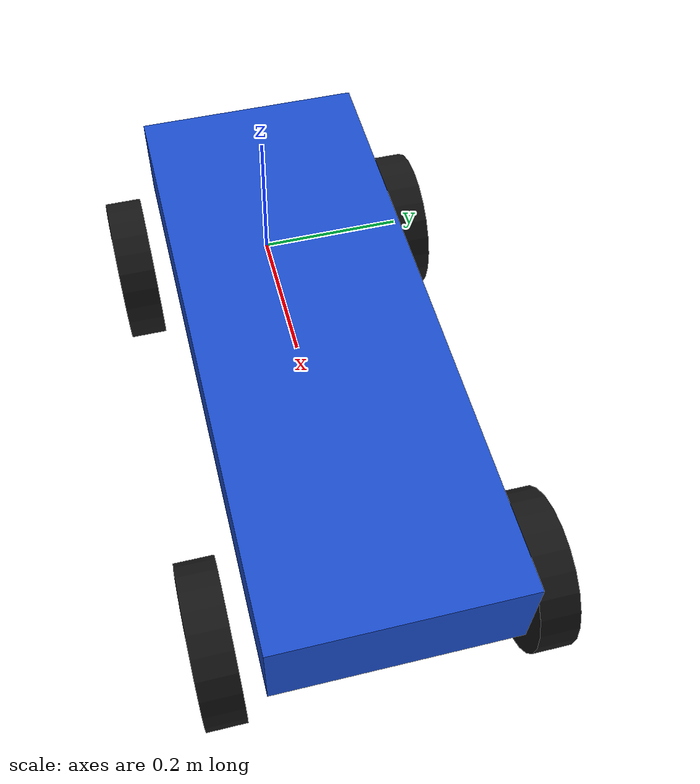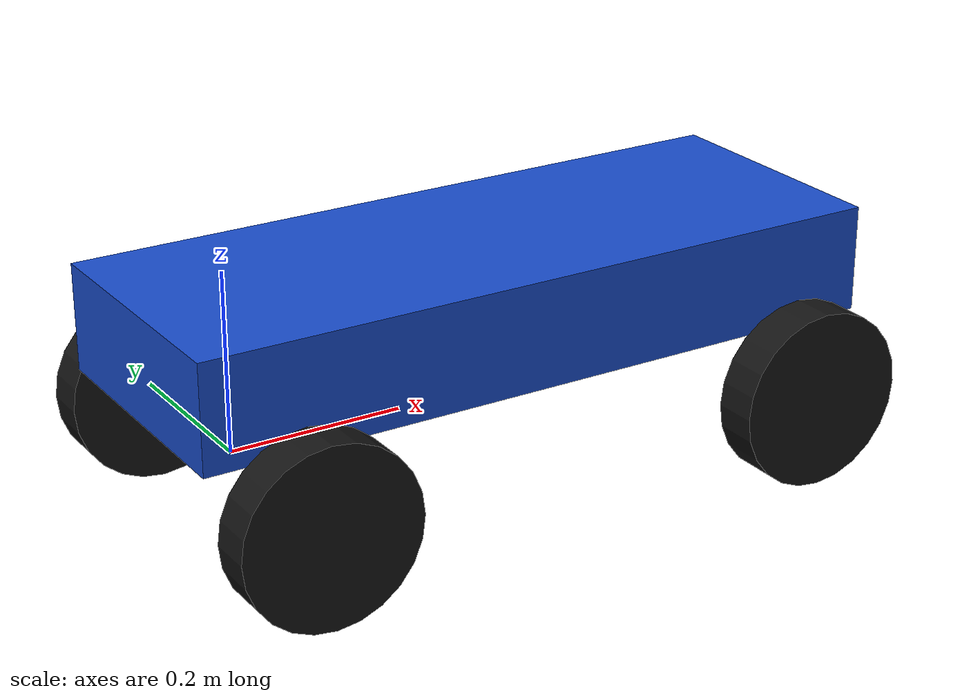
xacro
<?xml version="1.0"?>
<robot name="amr_robot" xmlns:xacro="http://www.ros.org/wiki/xacro">

  <!-- Parametry podwozia: metry i kilogramy -->
  <xacro:property name="chassis_length" value="0.80"/>
  <xacro:property name="chassis_width" value="0.30"/>
  <xacro:property name="chassis_height" value="0.12"/>
  <xacro:property name="chassis_mass" value="12.0"/>

  <!-- Parametry kół i skrętu -->
  <xacro:property name="wheel_radius" value="0.10"/>
  <xacro:property name="wheel_width" value="0.05"/>
  <xacro:property name="wheel_track" value="0.40"/>
  <xacro:property name="wheelbase" value="0.60"/>
  <xacro:property name="steering_limit" value="0.60"/>
  <xacro:property name="wheel_mass" value="0.50"/>
  <xacro:property name="steering_mass" value="0.20"/>
  <xacro:property name="steering_size" value="0.04"/>

  <!-- Kolory -->
  <material name="chassis_blue">
    <color rgba="0.1 0.3 0.8 1.0"/>
  </material>

  <material name="wheel_black">
    <color rgba="0.08 0.08 0.08 1.0"/>
  </material>

  <!-- Układ odniesienia w środku tylnej osi -->
  <link name="base_link"/>

  <!-- Podwozie -->
  <link name="chassis_link">
    <inertial>
      <origin xyz="0 0 0" rpy="0 0 0"/>
      <mass value="${chassis_mass}"/>
      <inertia
        ixx="${chassis_mass * (chassis_width**2 + chassis_height**2) / 12}"
        ixy="0"
        ixz="0"
        iyy="${chassis_mass * (chassis_length**2 + chassis_height**2) / 12}"
        iyz="0"
        izz="${chassis_mass * (chassis_length**2 + chassis_width**2) / 12}"/>
    </inertial>

    <visual>
      <geometry>
        <box size="${chassis_length} ${chassis_width} ${chassis_height}"/>
      </geometry>
      <material name="chassis_blue"/>
    </visual>

    <collision>
      <geometry>
        <box size="${chassis_length} ${chassis_width} ${chassis_height}"/>
      </geometry>
    </collision>
  </link>

  <joint name="base_to_chassis" type="fixed">
    <parent link="base_link"/>
    <child link="chassis_link"/>
    <origin xyz="0.30 0 0.12" rpy="0 0 0"/>
  </joint>

  <!-- Wspólna bezwładność koła: cylinder z osią Y -->
  <xacro:macro name="wheel_inertial">
    <inertial>
      <origin xyz="0 0 0" rpy="0 0 0"/>
      <mass value="${wheel_mass}"/>
      <inertia
        ixx="${wheel_mass * (3 * wheel_radius**2 + wheel_width**2) / 12}"
        ixy="0"
        ixz="0"
        iyy="${wheel_mass * wheel_radius**2 / 2}"
        iyz="0"
        izz="${wheel_mass * (3 * wheel_radius**2 + wheel_width**2) / 12}"/>
    </inertial>
  </xacro:macro>

  <!-- Tylne koło: obrót bez skrętu -->
  <xacro:macro name="rear_wheel" params="side y">

    <link name="rear_${side}_wheel_link">
      <xacro:wheel_inertial/>

      <visual>
        <origin xyz="0 0 0" rpy="${pi / 2} 0 0"/>
        <geometry>
          <cylinder radius="${wheel_radius}" length="${wheel_width}"/>
        </geometry>
        <material name="wheel_black"/>
      </visual>

      <collision>
        <origin xyz="0 0 0" rpy="${pi / 2} 0 0"/>
        <geometry>
          <cylinder radius="${wheel_radius}" length="${wheel_width}"/>
        </geometry>
      </collision>
    </link>

    <joint name="rear_${side}_wheel_joint" type="continuous">
      <parent link="base_link"/>
      <child link="rear_${side}_wheel_link"/>
      <origin xyz="0 ${y} 0" rpy="0 0 0"/>
      <axis xyz="0 1 0"/>
    </joint>

  </xacro:macro>

  <!-- Przednie koło: skręt zwrotnicy i obrót koła -->
  <xacro:macro name="front_wheel" params="side y">

    <link name="front_${side}_steering_link">
      <!-- Przybliżenie bezwładności zwrotnicy jako sześcianu -->
      <inertial>
        <origin xyz="0 0 0" rpy="0 0 0"/>
        <mass value="${steering_mass}"/>
        <inertia
          ixx="${steering_mass * steering_size**2 / 6}"
          ixy="0"
          ixz="0"
          iyy="${steering_mass * steering_size**2 / 6}"
          iyz="0"
          izz="${steering_mass * steering_size**2 / 6}"/>
      </inertial>
    </link>

    <joint name="front_${side}_steering_joint" type="revolute">
      <parent link="base_link"/>
      <child link="front_${side}_steering_link"/>
      <origin xyz="${wheelbase} ${y} 0" rpy="0 0 0"/>
      <axis xyz="0 0 1"/>
      <limit lower="${-steering_limit}"
             upper="${steering_limit}"
             effort="10.0"
             velocity="1.0"/>
    </joint>

    <link name="front_${side}_wheel_link">
      <xacro:wheel_inertial/>

      <visual>
        <origin xyz="0 0 0" rpy="${pi / 2} 0 0"/>
        <geometry>
          <cylinder radius="${wheel_radius}" length="${wheel_width}"/>
        </geometry>
        <material name="wheel_black"/>
      </visual>

      <collision>
        <origin xyz="0 0 0" rpy="${pi / 2} 0 0"/>
        <geometry>
          <cylinder radius="${wheel_radius}" length="${wheel_width}"/>
        </geometry>
      </collision>
    </link>

    <joint name="front_${side}_wheel_joint" type="continuous">
      <parent link="front_${side}_steering_link"/>
      <child link="front_${side}_wheel_link"/>
      <origin xyz="0 0 0" rpy="0 0 0"/>
      <axis xyz="0 1 0"/>
    </joint>

  </xacro:macro>

  <!-- Utworzenie czterech kół -->
  <xacro:rear_wheel side="left" y="${wheel_track / 2}"/>
  <xacro:rear_wheel side="right" y="${-wheel_track / 2}"/>
  <xacro:front_wheel side="left" y="${wheel_track / 2}"/>
  <xacro:front_wheel side="right" y="${-wheel_track / 2}"/>

  <!-- Odczyt rzeczywistych pozycji przegubów z Gazebo -->
  <gazebo>
    <plugin filename="gz-sim-joint-state-publisher-system"
            name="gz::sim::systems::JointStatePublisher">
      <topic>/model/amr_robot/joint_state</topic>

      <joint_name>rear_left_wheel_joint</joint_name>
      <joint_name>rear_right_wheel_joint</joint_name>
      <joint_name>front_left_steering_joint</joint_name>
      <joint_name>front_right_steering_joint</joint_name>
      <joint_name>front_left_wheel_joint</joint_name>
      <joint_name>front_right_wheel_joint</joint_name>
    </plugin>
  </gazebo>

  <!-- Kontroler prędkości pojedynczego koła: rad/s -->
  <xacro:macro name="wheel_drive" params="joint">
    <gazebo>
      <plugin filename="gz-sim-joint-controller-system"
              name="gz::sim::systems::JointController">
        <joint_name>${joint}</joint_name>
        <topic>/model/amr_robot/joint/${joint}/cmd_vel</topic>
        <initial_velocity>0.0</initial_velocity>
      </plugin>
    </gazebo>
  </xacro:macro>

  <!-- Cztery koła napędowe -->
  <xacro:wheel_drive joint="rear_left_wheel_joint"/>
  <xacro:wheel_drive joint="rear_right_wheel_joint"/>
  <xacro:wheel_drive joint="front_left_wheel_joint"/>
  <xacro:wheel_drive joint="front_right_wheel_joint"/>

  <!-- Kontroler kąta skrętu: radiany -->
  <xacro:macro name="steering_control" params="joint">
    <gazebo>
      <plugin filename="gz-sim-joint-position-controller-system"
              name="gz::sim::systems::JointPositionController">
        <joint_name>${joint}</joint_name>
        <topic>/model/amr_robot/joint/${joint}/cmd_pos</topic>
        <initial_position>0.0</initial_position>

        <!-- Sterowanie pozycją przez prędkość, maksymalnie 1 rad/s -->
        <use_velocity_commands>true</use_velocity_commands>
        <cmd_max>1.0</cmd_max>
      </plugin>
    </gazebo>
  </xacro:macro>

  <!-- Skręt tylko przednich kół -->
  <xacro:steering_control joint="front_left_steering_joint"/>
  <xacro:steering_control joint="front_right_steering_joint"/>

  <!-- Reference model pose for odometry validation only. -->
  <gazebo>
    <plugin filename="gz-sim-pose-publisher-system" name="gz::sim::systems::PosePublisher">
      <publish_model_pose>true</publish_model_pose>
      <publish_link_pose>false</publish_link_pose>
      <publish_visual_pose>false</publish_visual_pose>
      <publish_collision_pose>false</publish_collision_pose>
      <publish_sensor_pose>false</publish_sensor_pose>
      <publish_nested_model_pose>false</publish_nested_model_pose>
      <use_pose_vector_msg>true</use_pose_vector_msg>
      <update_frequency>50</update_frequency>
    </plugin>
  </gazebo>
</robot>
